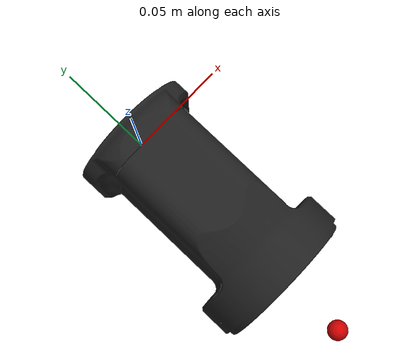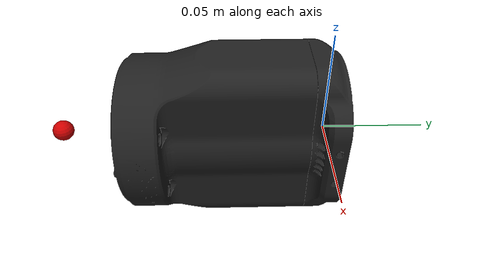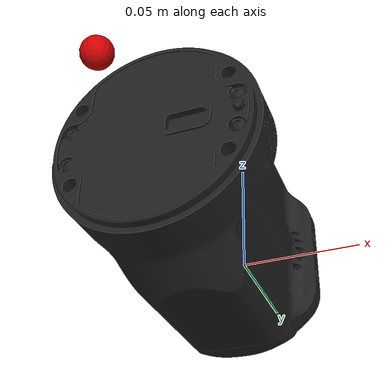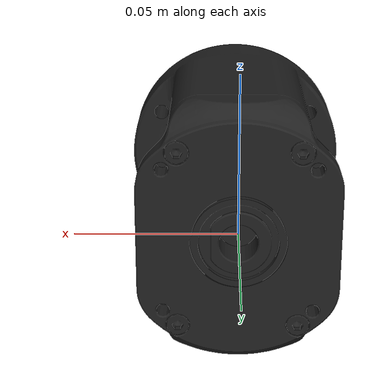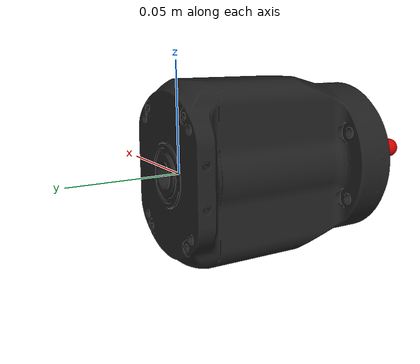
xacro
<robot  name="robotiq_vacuum_gripper" xmlns:xacro="http://www.ros.org/wiki/xacro">

  <xacro:include filename="$(find robotiq_vacuum_gripper_description)/urdf/materials.xacro" />

  <link name="robotiq_vacuum_gripper_link"/>

  <joint name="robotiq_vacuum_gripper_joint" type="fixed">
    <parent link="robotiq_vacuum_gripper_link"/>
    <child link="robotiq_vacuum_base_link"/>
  </joint>

  <link name="robotiq_vacuum_base_link">
    <visual>
      <origin xyz="0.0 0.0 0.0" rpy="0 0 0" />
        <geometry>
            <mesh filename="package://robotiq_vacuum_gripper_description/urdf/meshes/epick.stl" scale="0.001 0.001 0.001"/>
        </geometry>
      <material name="black"/>
    </visual>

    <collision>
      <origin xyz="0.0 0.0 0.0" rpy="0 0 0" />
        <geometry>
            <mesh filename="package://robotiq_vacuum_gripper_description/urdf/meshes/epick.stl" scale="0.001 0.001 0.001"/>
        </geometry>
    </collision>
  </link>

  <joint name="robotiq_vacuum_gripper_assembly_joint" type="fixed">
    <parent link="robotiq_vacuum_base_link"/>
    <child link="robotiq_vacuum_gripper_assembly_link"/>
    <origin rpy="0 0 0" xyz="0 -0.101 0"/>
  </joint>

  <link name="robotiq_vacuum_gripper_assembly_link"/>

  <joint name="robotiq_vacuum_gripper_suction_joint" type="fixed">
    <parent link="robotiq_vacuum_gripper_assembly_link"/>
    <child link="robotiq_vacuum_gripper_suction_point"/>
    <origin rpy="0 0 0" xyz="0 -0.028 0"/>
  </joint>

  <link name="robotiq_vacuum_gripper_suction_point">
    <visual>
      <origin xyz="0.0 0.0 0.0" rpy="0 0 0" />
        <geometry>
          <sphere radius="0.005"/>
        </geometry>
      <material name="red"/>
    </visual>
  </link>

</robot>

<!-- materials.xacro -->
<robot xmlns:xacro="http://www.ros.org/wiki/xacro">

  <material name="blue">
    <color rgba="0.0 0.0 0.8 1.0"/>
  </material>

  <material name="green">
    <color rgba="0.0 0.8 0.0 1.0"/>
  </material>

  <material name="orange">
    <color rgba="${255/255} ${108/255} ${10/255} 1.0"/>
  </material>

  <material name="brown">
    <color rgba="${222/255} ${207/255} ${195/255} 1.0"/>
  </material>

  <material name="red">
    <color rgba="0.8 0.0 0.0 1.0"/>
  </material>

  <material name="metal">
    <color rgba="0.768627450980392 0.749019607843137 0.729411764705882 1" />
  </material>

  <material name="metal_grey">
    <color rgba="0.501960784313725 0.501960784313725 0.501960784313725 1" />
  </material>

  <material name="metal_white">
    <color rgba="0.866666666666667 0.866666666666667 0.890196078431373 1" />
  </material>

</robot>
